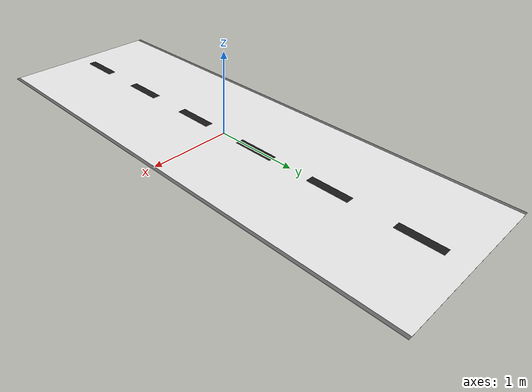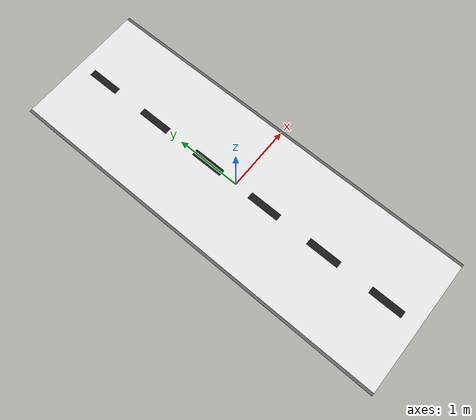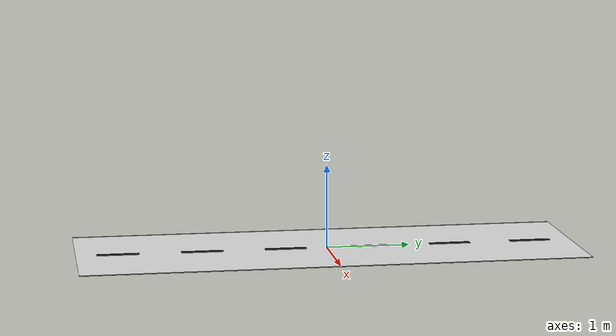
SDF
<?xml version="1.0" ?>
<sdf version="1.9">
  <model name="street_section">
    <static>true</static>
    <link name="link">

      <!-- Street surface (white/light gray) -->
      <visual name="street_surface">
        <pose>0 0 0.001 0 0 0</pose>
        <geometry>
          <box>
            <size>2 6 0.002</size>
          </box>
        </geometry>
        <material>
          <ambient>0.85 0.85 0.85 1</ambient>
          <diffuse>0.9 0.9 0.9 1</diffuse>
        </material>
      </visual>

      <!-- Street edges (darker) -->
      <visual name="edge_left">
        <pose>-1.02 0 0.001 0 0 0</pose>
        <geometry>
          <box>
            <size>0.04 6 0.002</size>
          </box>
        </geometry>
        <material>
          <ambient>0.3 0.3 0.3 1</ambient>
          <diffuse>0.4 0.4 0.4 1</diffuse>
        </material>
      </visual>

      <visual name="edge_right">
        <pose>1.02 0 0.001 0 0 0</pose>
        <geometry>
          <box>
            <size>0.04 6 0.002</size>
          </box>
        </geometry>
        <material>
          <ambient>0.3 0.3 0.3 1</ambient>
          <diffuse>0.4 0.4 0.4 1</diffuse>
        </material>
      </visual>

      <!-- Center dashed line -->
      <visual name="dash_1">
        <pose>0 -2.5 0.003 0 0 0</pose>
        <geometry>
          <box>
            <size>0.1 0.5 0.001</size>
          </box>
        </geometry>
        <material>
          <ambient>0 0 0 1</ambient>
          <diffuse>0.1 0.1 0.1 1</diffuse>
        </material>
      </visual>

      <visual name="dash_2">
        <pose>0 -1.5 0.003 0 0 0</pose>
        <geometry>
          <box>
            <size>0.1 0.5 0.001</size>
          </box>
        </geometry>
        <material>
          <ambient>0 0 0 1</ambient>
          <diffuse>0.1 0.1 0.1 1</diffuse>
        </material>
      </visual>

      <visual name="dash_3">
        <pose>0 -0.5 0.003 0 0 0</pose>
        <geometry>
          <box>
            <size>0.1 0.5 0.001</size>
          </box>
        </geometry>
        <material>
          <ambient>0 0 0 1</ambient>
          <diffuse>0.1 0.1 0.1 1</diffuse>
        </material>
      </visual>

      <visual name="dash_4">
        <pose>0 0.5 0.003 0 0 0</pose>
        <geometry>
          <box>
            <size>0.1 0.5 0.001</size>
          </box>
        </geometry>
        <material>
          <ambient>0 0 0 1</ambient>
          <diffuse>0.1 0.1 0.1 1</diffuse>
        </material>
      </visual>

      <visual name="dash_5">
        <pose>0 1.5 0.003 0 0 0</pose>
        <geometry>
          <box>
            <size>0.1 0.5 0.001</size>
          </box>
        </geometry>
        <material>
          <ambient>0 0 0 1</ambient>
          <diffuse>0.1 0.1 0.1 1</diffuse>
        </material>
      </visual>

      <visual name="dash_6">
        <pose>0 2.5 0.003 0 0 0</pose>
        <geometry>
          <box>
            <size>0.1 0.5 0.001</size>
          </box>
        </geometry>
        <material>
          <ambient>0 0 0 1</ambient>
          <diffuse>0.1 0.1 0.1 1</diffuse>
        </material>
      </visual>

    </link>
  </model>
</sdf>
